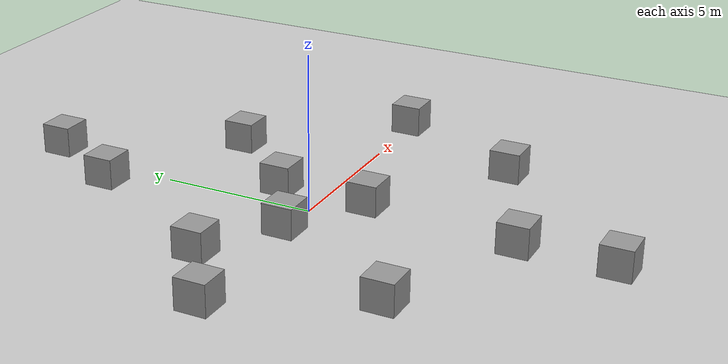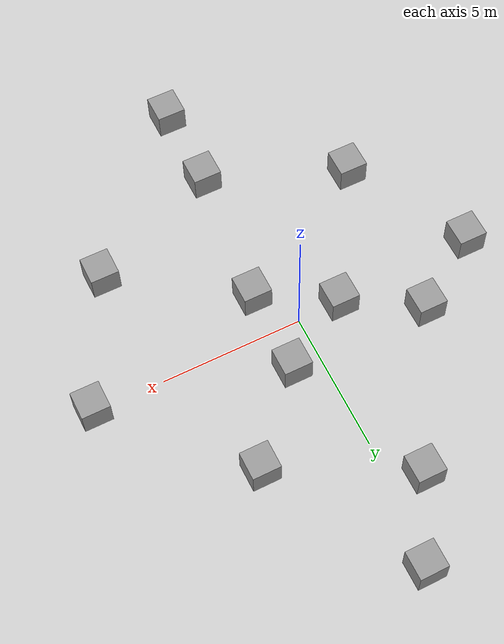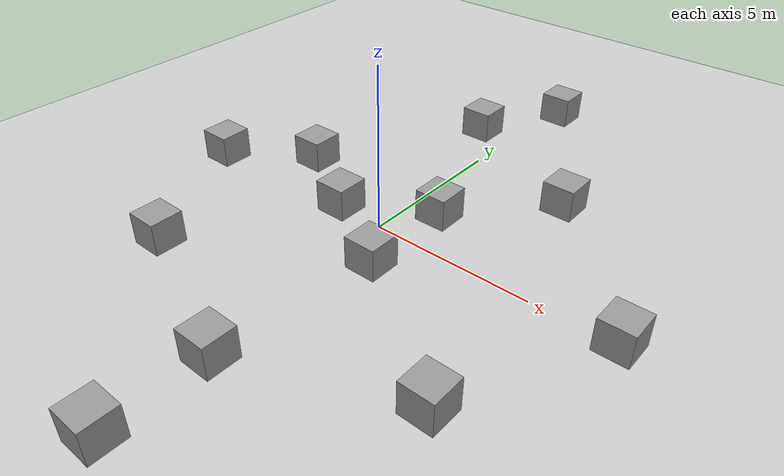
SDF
<sdf version="1.6">
 <world name="default">
  <light name="sun" type="directional">
   <pose>0 0 10 0 -0 0</pose>
   <diffuse>0.8 0.8 0.8 1</diffuse>
   <specular>0.1 0.1 0.1 1</specular>
   <attenuation>
    <range>1000</range>
    <constant>0.9</constant>
    <linear>0.01</linear>
    <quadratic>0.001</quadratic>
   </attenuation>
   <direction>-0.5 0.5 -1</direction>
  </light>
  <model name="ground_plane">
   <static>1</static>
   <link name="link">
    <collision name="collision">
     <geometry><plane><normal>0 0 1</normal><size>100 100</size></plane></geometry>
     <surface><friction><ode><mu>100</mu><mu2>50</mu2></ode></friction></surface>
    </collision>
    <visual name="visual">
     <cast_shadows>0</cast_shadows>
     <geometry><plane><normal>0 0 1</normal><size>100 100</size></plane></geometry>
     <material>
      <script><uri>file://media/materials/scripts/gazebo.material</uri><name>Gazebo/Grey</name></script>
     </material>
    </visual>
   </link>
  </model>
  <gravity>0 0 -9.8</gravity>
  <magnetic_field>6e-06 2.3e-05 -4.2e-05</magnetic_field>
  <atmosphere type="adiabatic"/>
  <physics name="default_physics" default="0" type="ode">
   <max_step_size>0.001</max_step_size>
   <real_time_factor>1</real_time_factor>
   <real_time_update_rate>1000</real_time_update_rate>
  </physics>
  <scene><ambient>0.4 0.4 0.4 1</ambient><background>0.7 0.7 0.7 1</background><shadows>1</shadows></scene>
  <spherical_coordinates>
   <surface_model>EARTH_WGS84</surface_model>
   <latitude_deg>0</latitude_deg>
   <longitude_deg>0</longitude_deg>
   <elevation>0</elevation>
   <heading_deg>0</heading_deg>
  </spherical_coordinates>
  <model name="unit_box_0">
   <pose>7.50313 -0.01765 0.5 -1e-05 0 0</pose>
   <link name="link">
    <inertial>
     <mass>1</mass>
     <inertia>
      <ixx>0.166667</ixx>
      <ixy>0</ixy>
      <ixz>0</ixz>
      <iyy>0.166667</iyy>
      <iyz>0</iyz>
      <izz>0.166667</izz>
     </inertia>
    </inertial>
    <collision name="collision"><geometry><box><size>1 1 1</size></box></geometry></collision>
    <visual name="visual">
     <geometry><box><size>1 1 1</size></box></geometry>
     <material>
      <script><name>Gazebo/Grey</name><uri>file://media/materials/scripts/gazebo.material</uri></script>
     </material>
    </visual>
   </link>
  </model>
  <model name="unit_box_1">
   <pose>1.02491 1.50585 0.5 0 -0 0</pose>
   <link name="link">
    <inertial>
     <mass>1</mass>
     <inertia>
      <ixx>0.166667</ixx>
      <ixy>0</ixy>
      <ixz>0</ixz>
      <iyy>0.166667</iyy>
      <iyz>0</iyz>
      <izz>0.166667</izz>
     </inertia>
    </inertial>
    <collision name="collision"><geometry><box><size>1 1 1</size></box></geometry></collision>
    <visual name="visual">
     <geometry><box><size>1 1 1</size></box></geometry>
     <material>
      <script><name>Gazebo/Grey</name><uri>file://media/materials/scripts/gazebo.material</uri></script>
     </material>
    </visual>
   </link>
  </model>
  <model name="unit_box_2">
   <pose>1.01299 -1.49183 0.5 0 -0 0</pose>
   <link name="link">
    <inertial>
     <mass>1</mass>
     <inertia>
      <ixx>0.166667</ixx>
      <ixy>0</ixy>
      <ixz>0</ixz>
      <iyy>0.166667</iyy>
      <iyz>0</iyz>
      <izz>0.166667</izz>
     </inertia>
    </inertial>
    <collision name="collision"><geometry><box><size>1 1 1</size></box></geometry></collision>
    <visual name="visual">
     <geometry><box><size>1 1 1</size></box></geometry>
     <material>
      <script><name>Gazebo/Grey</name><uri>file://media/materials/scripts/gazebo.material</uri></script>
     </material>
    </visual>
   </link>
  </model>
  <model name="unit_box_3">
   <pose>5.27932 -4.44428 0.5 0 -0 0</pose>
   <link name="link">
    <inertial>
     <mass>1</mass>
     <inertia>
      <ixx>0.166667</ixx>
      <ixy>0</ixy>
      <ixz>0</ixz>
      <iyy>0.166667</iyy>
      <iyz>0</iyz>
      <izz>0.166667</izz>
     </inertia>
    </inertial>
    <collision name="collision"><geometry><box><size>1 1 1</size></box></geometry></collision>
    <visual name="visual">
     <geometry><box><size>1 1 1</size></box></geometry>
     <material>
      <script><name>Gazebo/Grey</name><uri>file://media/materials/scripts/gazebo.material</uri></script>
     </material>
    </visual>
   </link>
  </model>
  <model name="unit_box_4">
   <pose>0.506996 -9.4909 0.5 0 -0 0</pose>
   <link name="link">
    <inertial>
     <mass>1</mass>
     <inertia>
      <ixx>0.166667</ixx>
      <ixy>0</ixy>
      <ixz>0</ixz>
      <iyy>0.166667</iyy>
      <iyz>0</iyz>
      <izz>0.166667</izz>
     </inertia>
    </inertial>
    <collision name="collision"><geometry><box><size>0.999994 1 1</size></box></geometry></collision>
    <visual name="visual">
     <geometry><box><size>0.999994 1 1</size></box></geometry>
     <material>
      <script><name>Gazebo/Grey</name><uri>file://media/materials/scripts/gazebo.material</uri></script>
     </material>
    </visual>
   </link>
  </model>
  <model name="unit_box_5">
   <pose>0.498397 -6.5028 0.5 0 -0 0</pose>
   <link name="link">
    <inertial>
     <mass>1</mass>
     <inertia>
      <ixx>0.166667</ixx>
      <ixy>0</ixy>
      <ixz>0</ixz>
      <iyy>0.166667</iyy>
      <iyz>0</iyz>
      <izz>0.166667</izz>
     </inertia>
    </inertial>
    <collision name="collision"><geometry><box><size>1 1 1</size></box></geometry></collision>
    <visual name="visual">
     <geometry><box><size>1 1 1</size></box></geometry>
     <material>
      <script><name>Gazebo/Grey</name><uri>file://media/materials/scripts/gazebo.material</uri></script>
     </material>
    </visual>
   </link>
  </model>
  <model name="unit_box_6">
   <pose>-4.21007 -4.52158 0.5 0 -0 0</pose>
   <link name="link">
    <inertial>
     <mass>1</mass>
     <inertia>
      <ixx>0.166667</ixx>
      <ixy>0</ixy>
      <ixz>0</ixz>
      <iyy>0.166667</iyy>
      <iyz>0</iyz>
      <izz>0.166667</izz>
     </inertia>
    </inertial>
    <collision name="collision"><geometry><box><size>1 1 1</size></box></geometry></collision>
    <visual name="visual">
     <geometry><box><size>1 1 1</size></box></geometry>
     <material>
      <script><name>Gazebo/Grey</name><uri>file://media/materials/scripts/gazebo.material</uri></script>
     </material>
    </visual>
   </link>
  </model>
  <model name="unit_box_7">
   <pose>-1.50707 0.008475 0.5 0 -0 0</pose>
   <link name="link">
    <inertial>
     <mass>1</mass>
     <inertia>
      <ixx>0.166667</ixx>
      <ixy>0</ixy>
      <ixz>0</ixz>
      <iyy>0.166667</iyy>
      <iyz>0</iyz>
      <izz>0.166667</izz>
     </inertia>
    </inertial>
    <collision name="collision"><geometry><box><size>1 1 1</size></box></geometry></collision>
    <visual name="visual">
     <geometry><box><size>1 1 1</size></box></geometry>
     <material>
      <script><name>Gazebo/Grey</name><uri>file://media/materials/scripts/gazebo.material</uri></script>
     </material>
    </visual>
   </link>
  </model>
  <model name="unit_box_8">
   <pose>-6.50604 -0.184214 0.5 0 -0 0</pose>
   <link name="link">
    <inertial>
     <mass>1</mass>
     <inertia>
      <ixx>0.166667</ixx>
      <ixy>0</ixy>
      <ixz>0</ixz>
      <iyy>0.166667</iyy>
      <iyz>0</iyz>
      <izz>0.166667</izz>
     </inertia>
    </inertial>
    <collision name="collision"><geometry><box><size>1 0.999998 1</size></box></geometry></collision>
    <visual name="visual">
     <geometry><box><size>1 0.999998 1</size></box></geometry>
     <material>
      <script><name>Gazebo/Grey</name><uri>file://media/materials/scripts/gazebo.material</uri></script>
     </material>
    </visual>
   </link>
  </model>
  <model name="unit_box_9">
   <pose>-4.00001 1.51223 0.5 0 -0 0</pose>
   <link name="link">
    <inertial>
     <mass>1</mass>
     <inertia>
      <ixx>0.166667</ixx>
      <ixy>0</ixy>
      <ixz>0</ixz>
      <iyy>0.166667</iyy>
      <iyz>0</iyz>
      <izz>0.166667</izz>
     </inertia>
    </inertial>
    <collision name="collision"><geometry><box><size>0.999998 1 1</size></box></geometry></collision>
    <visual name="visual">
     <geometry><box><size>0.999998 1 1</size></box></geometry>
     <material>
      <script><name>Gazebo/Grey</name><uri>file://media/materials/scripts/gazebo.material</uri></script>
     </material>
    </visual>
   </link>
  </model>
  <model name="unit_box_10">
   <pose>3.55793 4.28423 0.5 0 -0 0</pose>
   <link name="link">
    <inertial>
     <mass>1</mass>
     <inertia>
      <ixx>0.166667</ixx>
      <ixy>0</ixy>
      <ixz>0</ixz>
      <iyy>0.166667</iyy>
      <iyz>0</iyz>
      <izz>0.166667</izz>
     </inertia>
    </inertial>
    <collision name="collision"><geometry><box><size>1 0.999999 1</size></box></geometry></collision>
    <visual name="visual">
     <geometry><box><size>1 0.999999 1</size></box></geometry>
     <material>
      <script><name>Gazebo/Grey</name><uri>file://media/materials/scripts/gazebo.material</uri></script>
     </material>
    </visual>
   </link>
  </model>
  <model name="unit_box_11">
   <pose>0.484209 9.4519 0.5 0 -0 0</pose>
   <link name="link">
    <inertial>
     <mass>1</mass>
     <inertia>
      <ixx>0.166667</ixx>
      <ixy>0</ixy>
      <ixz>0</ixz>
      <iyy>0.166667</iyy>
      <iyz>0</iyz>
      <izz>0.166667</izz>
     </inertia>
    </inertial>
    <collision name="collision"><geometry><box><size>0.99999 1 1</size></box></geometry></collision>
    <visual name="visual">
     <geometry><box><size>0.99999 1 1</size></box></geometry>
     <material>
      <script><name>Gazebo/Grey</name><uri>file://media/materials/scripts/gazebo.material</uri></script>
     </material>
    </visual>
   </link>
  </model>
  <model name="unit_box_12">
   <pose>-1.01548 6.70191 0.5 0 -0 0</pose>
   <link name="link">
    <inertial>
     <mass>1</mass>
     <inertia>
      <ixx>0.166667</ixx>
      <ixy>0</ixy>
      <ixz>0</ixz>
      <iyy>0.166667</iyy>
      <iyz>0</iyz>
      <izz>0.166667</izz>
     </inertia>
    </inertial>
    <collision name="collision"><geometry><box><size>1 1 1</size></box></geometry></collision>
    <visual name="visual">
     <geometry><box><size>1 1 1</size></box></geometry>
     <material>
      <script><name>Gazebo/Grey</name><uri>file://media/materials/scripts/gazebo.material</uri></script>
     </material>
    </visual>
   </link>
  </model>
 </world>
</sdf>
